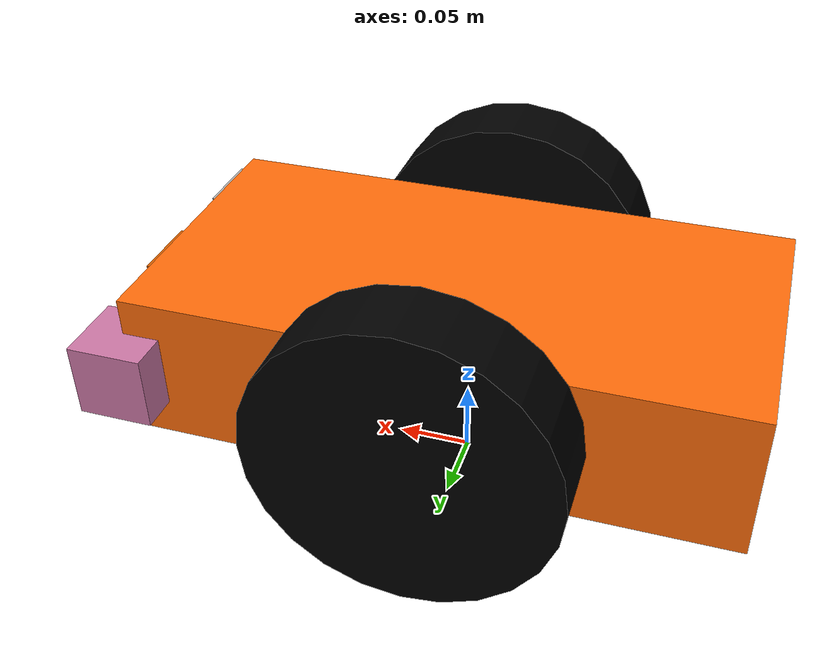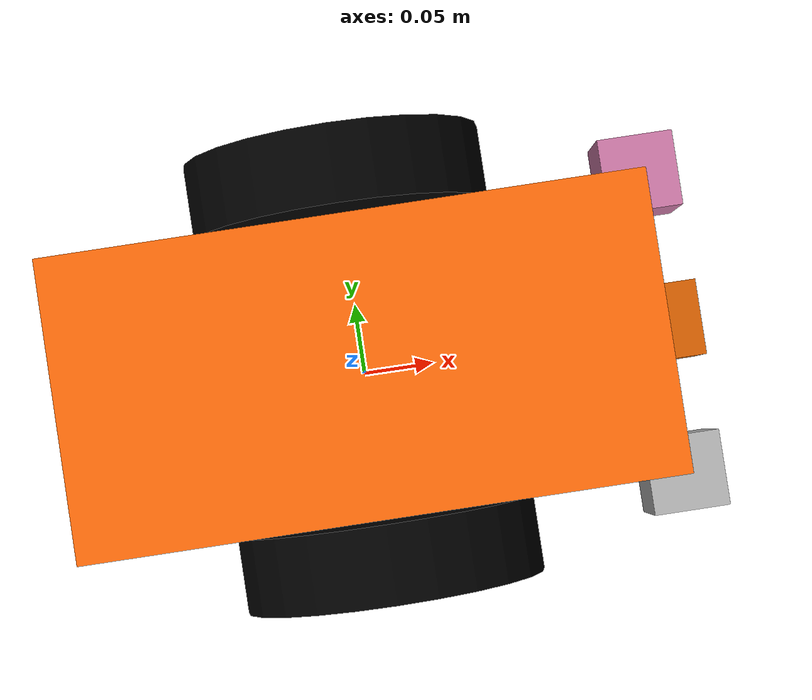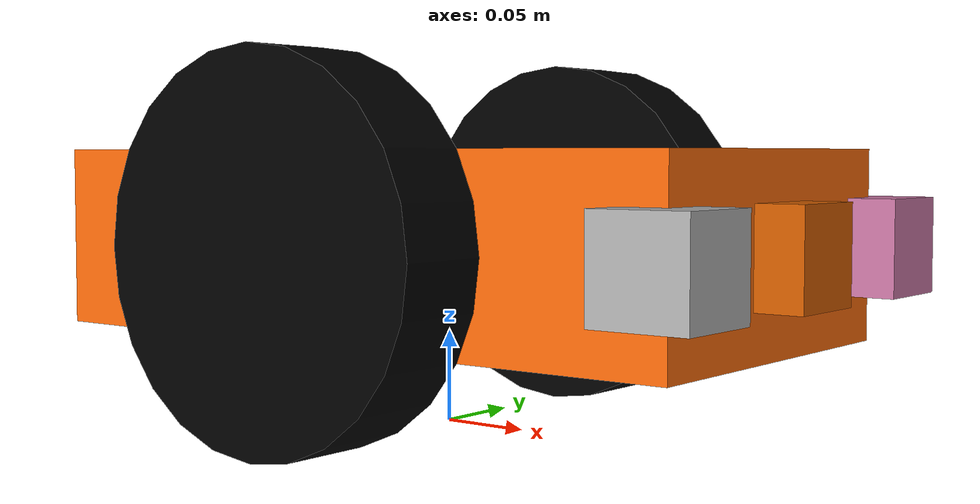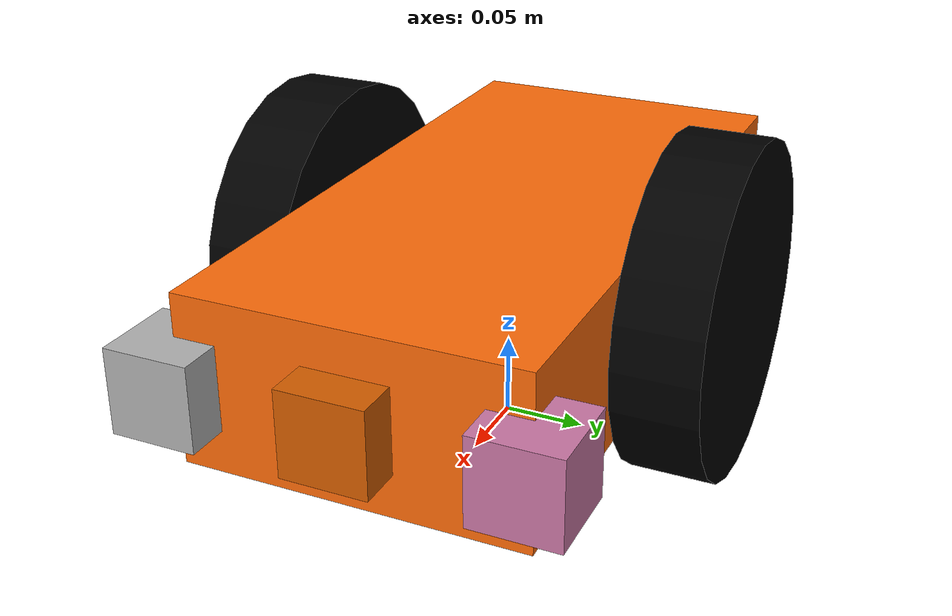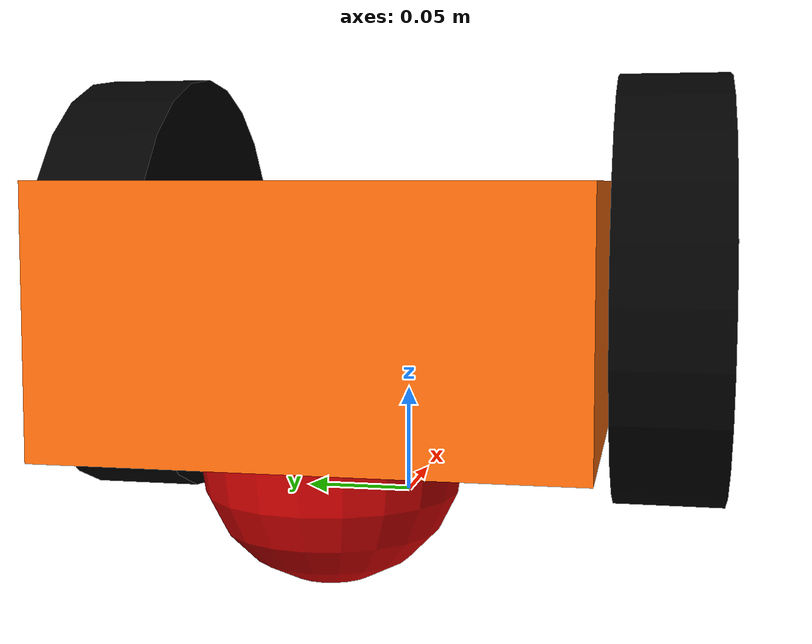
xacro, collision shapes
<?xml version="1.0"?>
<robot name="sangi" xmlns:xacro="http://www.ros.org/wiki/xacro">
        <!-- Put here the robot description -->

	<xacro:property name="PI" value="3.1415926535897931"/>
	<xacro:property name="chassisHeight" value="0.1"/>
	<xacro:property name="chassisLength" value="0.4"/>
	<xacro:property name="chassisWidth" value="0.2"/>
	<xacro:property name="chassisMass" value="50"/>

	<xacro:property name="casterRadius" value="0.05"/>
	<xacro:property name="casterMass" value="5"/>

	<xacro:property name="wheelWidth" value="0.05"/>
	<xacro:property name="wheelRadius" value="0.1"/>
	<xacro:property name="wheelPos" value="0.2"/>
	<xacro:property name="wheelMass" value="5"/>

	<xacro:property name="sonarSize" value="0.005"/>
	<xacro:property name="sonarMass" value="0.01"/>

	<xacro:include filename="$(find sangi_description)/urdf/sangi.gazebo" />
 	<xacro:include filename="$(find sangi_description)/urdf/materials.xacro" />
 	<xacro:include filename="$(find sangi_description)/urdf/macros.xacro" />
	<link name="footprint" />
	<joint name="base_joint" type="fixed">
			<parent link="footprint"/>
			<child link="chassis"/>
	</joint>

   <link name='chassis'>
    <collision>
      <origin xyz="0 0 ${wheelRadius}" rpy="0 0 0"/>
      <geometry>
        <box size="${chassisLength} ${chassisWidth} ${chassisHeight}"/>
      </geometry>
    </collision>
    <visual>
      <origin xyz="0 0 ${wheelRadius}" rpy="0 0 0"/>
      <geometry>
        <box size="${chassisLength} ${chassisWidth} ${chassisHeight}"/>
      </geometry>
      <material name="orange"/>
    </visual>
    <inertial>
      <origin xyz="0 0 ${wheelRadius}" rpy="0 0 0"/>
      <mass value="${chassisMass}"/>
      <box_inertia m="${chassisMass}" x="${chassisLength}" y="${chassisWidth}" z="${chassisHeight}" />
    </inertial>
   </link>
	<joint name="fixed" type="fixed">
	  	<parent link="chassis"/>
	  	<child link="caster_wheel"/>
	</joint>

<link name="caster_wheel">
  <collision>
    <origin xyz="${casterRadius-chassisLength/2} 0 ${casterRadius-chassisHeight+wheelRadius}" rpy="0 0 0"/>
    <geometry>
      <sphere radius="${casterRadius}"/>
    </geometry>
  </collision>

  <visual>
    <origin xyz="${casterRadius-chassisLength/2} 0 ${casterRadius-chassisHeight+wheelRadius}" rpy="0 0 0"/>
    <geometry>
      <sphere radius="${casterRadius}"/>
    </geometry>
    <material name="red"/>
  </visual>

  <inertial>
    <origin xyz="${casterRadius-chassisLength/2} 0 ${casterRadius-chassisHeight+wheelRadius}" rpy="0 0 0"/>
    <mass value="${casterMass}"/>
    <sphere_inertia m="${casterMass}" r="${casterRadius}"/>
  </inertial>
</link>
<wheel lr="left" tY="1"/>
<wheel lr="right" tY="-1"/>
<sonar_sensor name="sonar1" parent="chassis" ros_topic="sonar1" origin_new="${chassisLength/2} 0 ${chassisHeight}" rpy="0 0 0" update_rate="10" min_range="1" max_range="10" field_of_view="3.14" ray_count="1"/>
<sonar_sensor name="sonar2" parent="chassis" ros_topic="sonar2" origin_new="${chassisLength/2} ${chassisWidth/2} ${chassisHeight}" rpy="0 0 1.57" update_rate="10" min_range="1" max_range="10" field_of_view="3.14" ray_count="1"/>
<sonar_sensor name="sonar3" parent="chassis" ros_topic="sonar3" origin_new="${chassisLength/2} -${chassisWidth/2} ${chassisHeight}" rpy="0 0 -1.57" update_rate="10" min_range="1" max_range="10" field_of_view="3.14" ray_count="1"/>
</robot>

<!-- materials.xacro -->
<robot name="sangi" xmlns:xacro="http://www.ros.org/wiki/xacro">
	<material name="black">
	  <color rgba="0.0 0.0 0.0 1.0"/>
	</material>

	<material name="blue">
	  <color rgba="0.0 0.0 0.8 1.0"/>
	</material>

	<material name="green">
	  <color rgba="0.0 0.8 0.0 1.0"/>
	</material>

	<material name="grey">
	  <color rgba="0.2 0.2 0.2 1.0"/>
	</material>

	<material name="orange">
	  <color rgba="${255/255} ${108/255} ${10/255} 1.0"/>
	</material>

	<material name="brown">
	  <color rgba="${222/255} ${207/255} ${195/255} 1.0"/>
	</material>

	<material name="red">
	  <color rgba="0.8 0.0 0.0 1.0"/>
	</material>

	<material name="white">
	  <color rgba="1.0 1.0 1.0 1.0"/>
	</material>
</robot>

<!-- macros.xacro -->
<robot name="sangi" xmlns:xacro="http://www.ros.org/wiki/xacro">
  <macro name="cylinder_inertia" params="m r h">
    <inertia  ixx="${m*(3*r*r+h*h)/12}" ixy = "0" ixz = "0"
      iyy="${m*(3*r*r+h*h)/12}" iyz = "0"
      izz="${m*r*r/2}"
    />
  </macro>

  <macro name="box_inertia" params="m x y z">
    <inertia  ixx="${m*(y*y+z*z)/12}" ixy = "0" ixz = "0"
      iyy="${m*(x*x+z*z)/12}" iyz = "0"
      izz="${m*(x*x+z*z)/12}"
    />
  </macro>

  <macro name="sphere_inertia" params="m r">
    <inertia  ixx="${2*m*r*r/5}" ixy = "0" ixz = "0"
      iyy="${2*m*r*r/5}" iyz = "0"
      izz="${2*m*r*r/5}"
    />
  </macro>
  <macro name="wheel" params="lr tY">
	  <link name="${lr}_wheel">
	    <collision>
	      <origin xyz="0 0 0" rpy="0 ${PI/2} ${PI/2}" />
	      <geometry>
		<cylinder length="${wheelWidth}" radius="${wheelRadius}"/>
	      </geometry>
	    </collision>

	    <visual>
	      <origin xyz="0 0 0" rpy="0 ${PI/2} ${PI/2}" />
	      <geometry>
		<cylinder length="${wheelWidth}" radius="${wheelRadius}"/>
	      </geometry>
	      <material name="black"/>
	    </visual>

	    <inertial>
	      <origin xyz="0 0 0" rpy="0 ${PI/2} ${PI/2}" />
	      <mass value="${wheelMass}"/>
	      <cylinder_inertia m="${wheelMass}" r="${wheelRadius}" h="${wheelWidth}"/>
	    </inertial>
	  </link>

	  <gazebo reference="${lr}_wheel">
	    <mu1 value="100.0"/>
	    <mu2 value="100.0"/>
	    <kp  value="10000000.0" />
	    <kd  value="1.0" />
	    <fdir1 value="1 0 0"/>
	    <material>Gazebo/Black</material>
	  </gazebo>

	  <joint name="${lr}_wheel_hinge" type="continuous">
	    <parent link="chassis"/>
	    <child link="${lr}_wheel"/>
	  <origin xyz="${-wheelPos+chassisLength/2} ${tY*wheelWidth/2+tY*chassisWidth/2} ${wheelRadius}" rpy="0 0 0" />
	    <axis xyz="0 1 0" rpy="0 0 0" />
	    <limit effort="100" velocity="100"/>
	    <joint_properties damping="0.0" friction="0.0"/>
	  </joint>

	  <transmission name="${lr}_trans">
	    <type>transmission_interface/SimpleTransmission</type>
	    <joint name="${lr}_wheel_hinge">
	      <hardwareInterface>EffortJointInterface</hardwareInterface>
	    </joint>
	    <actuator name="${lr}Motor">
	      <hardwareInterface>EffortJointInterface</hardwareInterface>
	      <mechanicalReduction>10</mechanicalReduction>
	    </actuator>
	  </transmission>
  </macro>
    <xacro:macro name="sonar_sensor" params="name parent ros_topic origin_new rpy update_rate min_range max_range field_of_view ray_count">
    <joint name="${name}_joint" type="fixed">
      <parent link="${parent}"/>
      <child link="${name}_link"/>
    </joint>

    <link name="${name}_link">
      <inertial>
        <mass value="0.001" />
        <origin xyz="${origin_new}" rpy="${rpy}" />
        <inertia ixx="0.000000017" ixy="0" ixz="0" iyy="0.000000017" iyz="0" izz="0.000000017" />
      </inertial>
      <visual>
        <origin xyz="${origin_new}" rpy="${rpy}" />
        <geometry>
          <mesh filename="package://hector_sensors_description/meshes/sonar_sensor/max_sonar_ez4.dae"/>
        </geometry>
      </visual>
      <collision>
        <origin xyz="${origin_new}" rpy="${rpy}" />
        <geometry>
          <box size="0.05 0.05 0.05" />
        </geometry>
      </collision>
    </link>

    <gazebo reference="${name}_link">
      <sensor type="ray" name="${name}">
        <always_on>true</always_on>
        <update_rate>${update_rate}</update_rate>
        <pose>0 0 0 0 0 0</pose>
        <visualize>false</visualize>
        <ray>
          <scan>
            <horizontal>
              <samples>${ray_count}</samples>
              <resolution>1</resolution>
              <min_angle>-${field_of_view/2}</min_angle>
              <max_angle> ${field_of_view/2}</max_angle>
            </horizontal>
            <vertical>
              <samples>${ray_count}</samples>
              <resolution>1</resolution>
              <min_angle>-${field_of_view/2}</min_angle>
              <max_angle> ${field_of_view/2}</max_angle>
            </vertical>
          </scan>
          <range>
            <min>${min_range}</min>
            <max>${max_range}</max>
            <resolution>0.01</resolution>
          </range>
        </ray>

        <plugin name="gazebo_ros_${name}_controller" filename="libhector_gazebo_ros_sonar.so">
          <gaussianNoise>0.005</gaussianNoise>
          <topicName>${ros_topic}</topicName>
          <frameId>${name}_link</frameId>
        </plugin>
      </sensor>
    </gazebo>
  </xacro:macro>

</robot>
